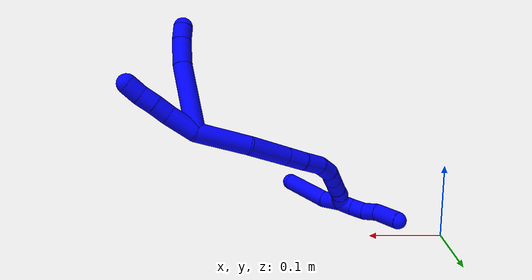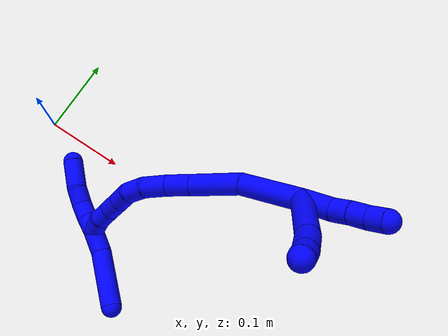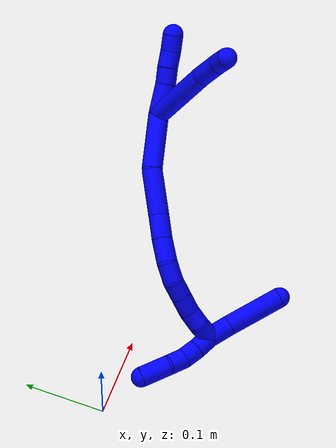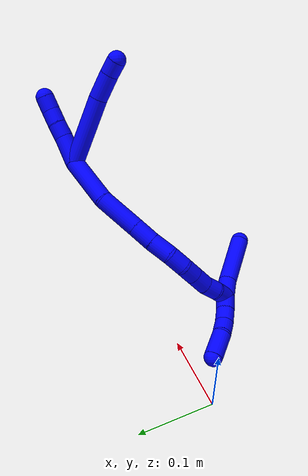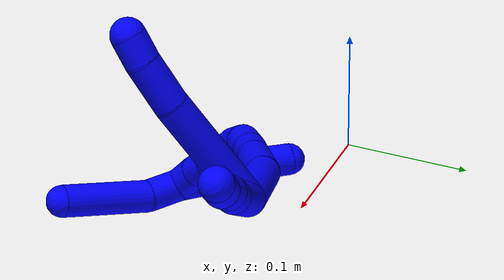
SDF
<sdf version="1.7">
 <world name="default">
  <model name="1">
   <static>0</static>
   <link name="1">
    <collision name="collision-cylinder-e_1_2_8">
     <pose>-0.022799 -0.006293 0.040173 0.155375 -0.511007 -0.040662</pose>
     <geometry><cylinder><radius>0.0125</radius><length>0.093235</length></cylinder></geometry>
     <surface>
      <friction><ode><mu>1.16</mu><mu2>1.16</mu2><slip1>0</slip1><slip2>0</slip2></ode></friction>
      <contact><ode><kp>1e+06</kp><kd>1</kd><max_vel>0</max_vel><min_depth>0.001</min_depth></ode></contact>
     </surface>
    </collision>
    <visual name="visual-cylinder-e_1_2_8">
     <pose>-0.022799 -0.006293 0.040173 0.155375 -0.511007 -0.040662</pose>
     <geometry><cylinder><radius>0.0125</radius><length>0.093235</length></cylinder></geometry>
     <material><ambient>0 0 1 1</ambient></material>
    </visual>
    <collision name="collision-cylinder-e_2_8_9">
     <pose>-0.056466 -0.014445 0.09463 0.129459 -0.646367 -0.043413</pose>
     <geometry><cylinder><radius>0.0125</radius><length>0.036091</length></cylinder></geometry>
     <surface>
      <friction><ode><mu>1.16</mu><mu2>1.16</mu2><slip1>0</slip1><slip2>0</slip2></ode></friction>
      <contact><ode><kp>1e+06</kp><kd>1</kd><max_vel>0</max_vel><min_depth>0.001</min_depth></ode></contact>
     </surface>
    </collision>
    <visual name="visual-cylinder-e_2_8_9">
     <pose>-0.056466 -0.014445 0.09463 0.129459 -0.646367 -0.043413</pose>
     <geometry><cylinder><radius>0.0125</radius><length>0.036091</length></cylinder></geometry>
     <material><ambient>0 0 1 1</ambient></material>
    </visual>
    <collision name="collision-cylinder-e_3_9_6">
     <pose>-0.074538 -0.016807 0.116311 0.067872 -0.771045 -0.027553</pose>
     <geometry><cylinder><radius>0.0125</radius><length>0.020673</length></cylinder></geometry>
     <surface>
      <friction><ode><mu>1.16</mu><mu2>1.16</mu2><slip1>0</slip1><slip2>0</slip2></ode></friction>
      <contact><ode><kp>1e+06</kp><kd>1</kd><max_vel>0</max_vel><min_depth>0.001</min_depth></ode></contact>
     </surface>
    </collision>
    <visual name="visual-cylinder-e_3_9_6">
     <pose>-0.074538 -0.016807 0.116311 0.067872 -0.771045 -0.027553</pose>
     <geometry><cylinder><radius>0.0125</radius><length>0.020673</length></cylinder></geometry>
     <material><ambient>0 0 1 1</ambient></material>
    </visual>
    <collision name="collision-cylinder-e_1_2_10">
     <pose>0.00683 0.00134 0.018038 -0.07416 0.361047 -0.013541</pose>
     <geometry><cylinder><radius>0.0125</radius><length>0.038668</length></cylinder></geometry>
     <surface>
      <friction><ode><mu>1.16</mu><mu2>1.16</mu2><slip1>0</slip1><slip2>0</slip2></ode></friction>
      <contact><ode><kp>1e+06</kp><kd>1</kd><max_vel>0</max_vel><min_depth>0.001</min_depth></ode></contact>
     </surface>
    </collision>
    <visual name="visual-cylinder-e_1_2_10">
     <pose>0.00683 0.00134 0.018038 -0.07416 0.361047 -0.013541</pose>
     <geometry><cylinder><radius>0.0125</radius><length>0.038668</length></cylinder></geometry>
     <material><ambient>0 0 1 1</ambient></material>
    </visual>
    <collision name="collision-cylinder-e_2_10_11">
     <pose>0.016817 0.00472 0.045662 -0.209658 0.311684 -0.033059</pose>
     <geometry><cylinder><radius>0.0125</radius><length>0.020596</length></cylinder></geometry>
     <surface>
      <friction><ode><mu>1.16</mu><mu2>1.16</mu2><slip1>0</slip1><slip2>0</slip2></ode></friction>
      <contact><ode><kp>1e+06</kp><kd>1</kd><max_vel>0</max_vel><min_depth>0.001</min_depth></ode></contact>
     </surface>
    </collision>
    <visual name="visual-cylinder-e_2_10_11">
     <pose>0.016817 0.00472 0.045662 -0.209658 0.311684 -0.033059</pose>
     <geometry><cylinder><radius>0.0125</radius><length>0.020596</length></cylinder></geometry>
     <material><ambient>0 0 1 1</ambient></material>
    </visual>
    <collision name="collision-cylinder-e_3_11_12">
     <pose>0.02348 0.007844 0.064694 -0.114275 0.353184 -0.020414</pose>
     <geometry><cylinder><radius>0.0125</radius><length>0.020264</length></cylinder></geometry>
     <surface>
      <friction><ode><mu>1.16</mu><mu2>1.16</mu2><slip1>0</slip1><slip2>0</slip2></ode></friction>
      <contact><ode><kp>1e+06</kp><kd>1</kd><max_vel>0</max_vel><min_depth>0.001</min_depth></ode></contact>
     </surface>
    </collision>
    <visual name="visual-cylinder-e_3_11_12">
     <pose>0.02348 0.007844 0.064694 -0.114275 0.353184 -0.020414</pose>
     <geometry><cylinder><radius>0.0125</radius><length>0.020264</length></cylinder></geometry>
     <material><ambient>0 0 1 1</ambient></material>
    </visual>
    <collision name="collision-cylinder-e_4_12_5">
     <pose>0.02945 0.011008 0.083854 -0.210866 0.243239 -0.025867</pose>
     <geometry><cylinder><radius>0.0125</radius><length>0.020472</length></cylinder></geometry>
     <surface>
      <friction><ode><mu>1.16</mu><mu2>1.16</mu2><slip1>0</slip1><slip2>0</slip2></ode></friction>
      <contact><ode><kp>1e+06</kp><kd>1</kd><max_vel>0</max_vel><min_depth>0.001</min_depth></ode></contact>
     </surface>
    </collision>
    <visual name="visual-cylinder-e_4_12_5">
     <pose>0.02945 0.011008 0.083854 -0.210866 0.243239 -0.025867</pose>
     <geometry><cylinder><radius>0.0125</radius><length>0.020472</length></cylinder></geometry>
     <material><ambient>0 0 1 1</ambient></material>
    </visual>
    <collision name="collision-cylinder-e_1_2_13">
     <pose>-0.022231 -0.001847 -0.026769 3.07271 -0.691893 -2.95099</pose>
     <geometry><cylinder><radius>0.0125</radius><length>0.069691</length></cylinder></geometry>
     <surface>
      <friction><ode><mu>1.16</mu><mu2>1.16</mu2><slip1>0</slip1><slip2>0</slip2></ode></friction>
      <contact><ode><kp>1e+06</kp><kd>1</kd><max_vel>0</max_vel><min_depth>0.001</min_depth></ode></contact>
     </surface>
    </collision>
    <visual name="visual-cylinder-e_1_2_13">
     <pose>-0.022231 -0.001847 -0.026769 3.07271 -0.691893 -2.95099</pose>
     <geometry><cylinder><radius>0.0125</radius><length>0.069691</length></cylinder></geometry>
     <material><ambient>0 0 1 1</ambient></material>
    </visual>
    <collision name="collision-cylinder-e_2_13_14">
     <pose>-0.063036 -0.012749 -0.073897 2.72311 -0.694881 -2.0809</pose>
     <geometry><cylinder><radius>0.0125</radius><length>0.058017</length></cylinder></geometry>
     <surface>
      <friction><ode><mu>1.16</mu><mu2>1.16</mu2><slip1>0</slip1><slip2>0</slip2></ode></friction>
      <contact><ode><kp>1e+06</kp><kd>1</kd><max_vel>0</max_vel><min_depth>0.001</min_depth></ode></contact>
     </surface>
    </collision>
    <visual name="visual-cylinder-e_2_13_14">
     <pose>-0.063036 -0.012749 -0.073897 2.72311 -0.694881 -2.0809</pose>
     <geometry><cylinder><radius>0.0125</radius><length>0.058017</length></cylinder></geometry>
     <material><ambient>0 0 1 1</ambient></material>
    </visual>
    <collision name="collision-cylinder-e_3_14_15">
     <pose>-0.090968 -0.026271 -0.104599 2.73388 -0.693152 -2.10181</pose>
     <geometry><cylinder><radius>0.0125</radius><length>0.029291</length></cylinder></geometry>
     <surface>
      <friction><ode><mu>1.16</mu><mu2>1.16</mu2><slip1>0</slip1><slip2>0</slip2></ode></friction>
      <contact><ode><kp>1e+06</kp><kd>1</kd><max_vel>0</max_vel><min_depth>0.001</min_depth></ode></contact>
     </surface>
    </collision>
    <visual name="visual-cylinder-e_3_14_15">
     <pose>-0.090968 -0.026271 -0.104599 2.73388 -0.693152 -2.10181</pose>
     <geometry><cylinder><radius>0.0125</radius><length>0.029291</length></cylinder></geometry>
     <material><ambient>0 0 1 1</ambient></material>
    </visual>
    <collision name="collision-cylinder-e_4_15_16">
     <pose>-0.110085 -0.036009 -0.124688 2.64584 -0.722052 -1.96059</pose>
     <geometry><cylinder><radius>0.0125</radius><length>0.029532</length></cylinder></geometry>
     <surface>
      <friction><ode><mu>1.16</mu><mu2>1.16</mu2><slip1>0</slip1><slip2>0</slip2></ode></friction>
      <contact><ode><kp>1e+06</kp><kd>1</kd><max_vel>0</max_vel><min_depth>0.001</min_depth></ode></contact>
     </surface>
    </collision>
    <visual name="visual-cylinder-e_4_15_16">
     <pose>-0.110085 -0.036009 -0.124688 2.64584 -0.722052 -1.96059</pose>
     <geometry><cylinder><radius>0.0125</radius><length>0.029532</length></cylinder></geometry>
     <material><ambient>0 0 1 1</ambient></material>
    </visual>
    <collision name="collision-cylinder-e_5_16_17">
     <pose>-0.125051 -0.047953 -0.143136 2.48735 -0.443312 -1.17254</pose>
     <geometry><cylinder><radius>0.0125</radius><length>0.024277</length></cylinder></geometry>
     <surface>
      <friction><ode><mu>1.16</mu><mu2>1.16</mu2><slip1>0</slip1><slip2>0</slip2></ode></friction>
      <contact><ode><kp>1e+06</kp><kd>1</kd><max_vel>0</max_vel><min_depth>0.001</min_depth></ode></contact>
     </surface>
    </collision>
    <visual name="visual-cylinder-e_5_16_17">
     <pose>-0.125051 -0.047953 -0.143136 2.48735 -0.443312 -1.17254</pose>
     <geometry><cylinder><radius>0.0125</radius><length>0.024277</length></cylinder></geometry>
     <material><ambient>0 0 1 1</ambient></material>
    </visual>
    <collision name="collision-cylinder-e_6_17_18">
     <pose>-0.131819 -0.062434 -0.158925 2.30791 -0.146976 -0.329518</pose>
     <geometry><cylinder><radius>0.0125</radius><length>0.02132</length></cylinder></geometry>
     <surface>
      <friction><ode><mu>1.16</mu><mu2>1.16</mu2><slip1>0</slip1><slip2>0</slip2></ode></friction>
      <contact><ode><kp>1e+06</kp><kd>1</kd><max_vel>0</max_vel><min_depth>0.001</min_depth></ode></contact>
     </surface>
    </collision>
    <visual name="visual-cylinder-e_6_17_18">
     <pose>-0.131819 -0.062434 -0.158925 2.30791 -0.146976 -0.329518</pose>
     <geometry><cylinder><radius>0.0125</radius><length>0.02132</length></cylinder></geometry>
     <material><ambient>0 0 1 1</ambient></material>
    </visual>
    <collision name="collision-cylinder-e_7_18_19">
     <pose>-0.13521 -0.078903 -0.173936 2.31167 -0.154656 -0.348201</pose>
     <geometry><cylinder><radius>0.0125</radius><length>0.02376</length></cylinder></geometry>
     <surface>
      <friction><ode><mu>1.16</mu><mu2>1.16</mu2><slip1>0</slip1><slip2>0</slip2></ode></friction>
      <contact><ode><kp>1e+06</kp><kd>1</kd><max_vel>0</max_vel><min_depth>0.001</min_depth></ode></contact>
     </surface>
    </collision>
    <visual name="visual-cylinder-e_7_18_19">
     <pose>-0.13521 -0.078903 -0.173936 2.31167 -0.154656 -0.348201</pose>
     <geometry><cylinder><radius>0.0125</radius><length>0.02376</length></cylinder></geometry>
     <material><ambient>0 0 1 1</ambient></material>
    </visual>
    <collision name="collision-cylinder-e_8_19_20">
     <pose>-0.139922 -0.09586 -0.18736 2.15641 -0.281815 -0.516755</pose>
     <geometry><cylinder><radius>0.0125</radius><length>0.020727</length></cylinder></geometry>
     <surface>
      <friction><ode><mu>1.16</mu><mu2>1.16</mu2><slip1>0</slip1><slip2>0</slip2></ode></friction>
      <contact><ode><kp>1e+06</kp><kd>1</kd><max_vel>0</max_vel><min_depth>0.001</min_depth></ode></contact>
     </surface>
    </collision>
    <visual name="visual-cylinder-e_8_19_20">
     <pose>-0.139922 -0.09586 -0.18736 2.15641 -0.281815 -0.516755</pose>
     <geometry><cylinder><radius>0.0125</radius><length>0.020727</length></cylinder></geometry>
     <material><ambient>0 0 1 1</ambient></material>
    </visual>
    <collision name="collision-cylinder-e_9_20_1">
     <pose>-0.143006 -0.114179 -0.19888 2.11153 -0.017259 -0.030492</pose>
     <geometry><cylinder><radius>0.0125</radius><length>0.023386</length></cylinder></geometry>
     <surface>
      <friction><ode><mu>1.16</mu><mu2>1.16</mu2><slip1>0</slip1><slip2>0</slip2></ode></friction>
      <contact><ode><kp>1e+06</kp><kd>1</kd><max_vel>0</max_vel><min_depth>0.001</min_depth></ode></contact>
     </surface>
    </collision>
    <visual name="visual-cylinder-e_9_20_1">
     <pose>-0.143006 -0.114179 -0.19888 2.11153 -0.017259 -0.030492</pose>
     <geometry><cylinder><radius>0.0125</radius><length>0.023386</length></cylinder></geometry>
     <material><ambient>0 0 1 1</ambient></material>
    </visual>
    <collision name="collision-cylinder-e_1_1_21">
     <pose>-0.146181 -0.11843 -0.213124 -2.52974 -0.287657 0.859879</pose>
     <geometry><cylinder><radius>0.0125</radius><length>0.020957</length></cylinder></geometry>
     <surface>
      <friction><ode><mu>1.16</mu><mu2>1.16</mu2><slip1>0</slip1><slip2>0</slip2></ode></friction>
      <contact><ode><kp>1e+06</kp><kd>1</kd><max_vel>0</max_vel><min_depth>0.001</min_depth></ode></contact>
     </surface>
    </collision>
    <visual name="visual-cylinder-e_1_1_21">
     <pose>-0.146181 -0.11843 -0.213124 -2.52974 -0.287657 0.859879</pose>
     <geometry><cylinder><radius>0.0125</radius><length>0.020957</length></cylinder></geometry>
     <material><ambient>0 0 1 1</ambient></material>
    </visual>
    <collision name="collision-cylinder-e_2_21_22">
     <pose>-0.151908 -0.106209 -0.228696 -2.42116 -0.274642 0.70329</pose>
     <geometry><cylinder><radius>0.0125</radius><length>0.020315</length></cylinder></geometry>
     <surface>
      <friction><ode><mu>1.16</mu><mu2>1.16</mu2><slip1>0</slip1><slip2>0</slip2></ode></friction>
      <contact><ode><kp>1e+06</kp><kd>1</kd><max_vel>0</max_vel><min_depth>0.001</min_depth></ode></contact>
     </surface>
    </collision>
    <visual name="visual-cylinder-e_2_21_22">
     <pose>-0.151908 -0.106209 -0.228696 -2.42116 -0.274642 0.70329</pose>
     <geometry><cylinder><radius>0.0125</radius><length>0.020315</length></cylinder></geometry>
     <material><ambient>0 0 1 1</ambient></material>
    </visual>
    <collision name="collision-cylinder-e_3_22_23">
     <pose>-0.158261 -0.090895 -0.241278 -2.10414 -0.33629 0.578048</pose>
     <geometry><cylinder><radius>0.0125</radius><length>0.021809</length></cylinder></geometry>
     <surface>
      <friction><ode><mu>1.16</mu><mu2>1.16</mu2><slip1>0</slip1><slip2>0</slip2></ode></friction>
      <contact><ode><kp>1e+06</kp><kd>1</kd><max_vel>0</max_vel><min_depth>0.001</min_depth></ode></contact>
     </surface>
    </collision>
    <visual name="visual-cylinder-e_3_22_23">
     <pose>-0.158261 -0.090895 -0.241278 -2.10414 -0.33629 0.578048</pose>
     <geometry><cylinder><radius>0.0125</radius><length>0.021809</length></cylinder></geometry>
     <material><ambient>0 0 1 1</ambient></material>
    </visual>
    <collision name="collision-cylinder-e_4_23_4">
     <pose>-0.163929 -0.067805 -0.25809 -2.25398 -0.112351 0.235464</pose>
     <geometry><cylinder><radius>0.0125</radius><length>0.036918</length></cylinder></geometry>
     <surface>
      <friction><ode><mu>1.16</mu><mu2>1.16</mu2><slip1>0</slip1><slip2>0</slip2></ode></friction>
      <contact><ode><kp>1e+06</kp><kd>1</kd><max_vel>0</max_vel><min_depth>0.001</min_depth></ode></contact>
     </surface>
    </collision>
    <visual name="visual-cylinder-e_4_23_4">
     <pose>-0.163929 -0.067805 -0.25809 -2.25398 -0.112351 0.235464</pose>
     <geometry><cylinder><radius>0.0125</radius><length>0.036918</length></cylinder></geometry>
     <material><ambient>0 0 1 1</ambient></material>
    </visual>
    <collision name="collision-cylinder-e_1_1_24">
     <pose>-0.138687 -0.134518 -0.196338 0.878113 0.325245 0.153801</pose>
     <geometry><cylinder><radius>0.0125</radius><length>0.028294</length></cylinder></geometry>
     <surface>
      <friction><ode><mu>1.16</mu><mu2>1.16</mu2><slip1>0</slip1><slip2>0</slip2></ode></friction>
      <contact><ode><kp>1e+06</kp><kd>1</kd><max_vel>0</max_vel><min_depth>0.001</min_depth></ode></contact>
     </surface>
    </collision>
    <visual name="visual-cylinder-e_1_1_24">
     <pose>-0.138687 -0.134518 -0.196338 0.878113 0.325245 0.153801</pose>
     <geometry><cylinder><radius>0.0125</radius><length>0.028294</length></cylinder></geometry>
     <material><ambient>0 0 1 1</ambient></material>
    </visual>
    <collision name="collision-cylinder-e_2_24_3">
     <pose>-0.130815 -0.169408 -0.161887 0.759342 0.093615 0.037378</pose>
     <geometry><cylinder><radius>0.0125</radius><length>0.071706</length></cylinder></geometry>
     <surface>
      <friction><ode><mu>1.16</mu><mu2>1.16</mu2><slip1>0</slip1><slip2>0</slip2></ode></friction>
      <contact><ode><kp>1e+06</kp><kd>1</kd><max_vel>0</max_vel><min_depth>0.001</min_depth></ode></contact>
     </surface>
    </collision>
    <visual name="visual-cylinder-e_2_24_3">
     <pose>-0.130815 -0.169408 -0.161887 0.759342 0.093615 0.037378</pose>
     <geometry><cylinder><radius>0.0125</radius><length>0.071706</length></cylinder></geometry>
     <material><ambient>0 0 1 1</ambient></material>
    </visual>
    <collision name="collision-sphere-3">
     <pose>-0.127464 -0.193983 -0.135997 0 -0 0</pose>
     <geometry><sphere><radius>0.0125</radius></sphere></geometry>
     <surface>
      <friction><ode><mu>1.16</mu><mu2>1.16</mu2><slip1>0</slip1><slip2>0</slip2></ode></friction>
      <contact><ode><kp>1e+06</kp><kd>1</kd><max_vel>0</max_vel><min_depth>0.001</min_depth></ode></contact>
     </surface>
    </collision>
    <visual name="visual-sphere-3">
     <pose>-0.127464 -0.193983 -0.135997 0 -0 0</pose>
     <geometry><sphere><radius>0.0125</radius></sphere></geometry>
     <material><ambient>0 0 1 1</ambient></material>
    </visual>
    <collision name="collision-sphere-24">
     <pose>-0.134167 -0.144834 -0.187777 0 -0 0</pose>
     <geometry><sphere><radius>0.0125</radius></sphere></geometry>
     <surface>
      <friction><ode><mu>1.16</mu><mu2>1.16</mu2><slip1>0</slip1><slip2>0</slip2></ode></friction>
      <contact><ode><kp>1e+06</kp><kd>1</kd><max_vel>0</max_vel><min_depth>0.001</min_depth></ode></contact>
     </surface>
    </collision>
    <visual name="visual-sphere-24">
     <pose>-0.134167 -0.144834 -0.187777 0 -0 0</pose>
     <geometry><sphere><radius>0.0125</radius></sphere></geometry>
     <material><ambient>0 0 1 1</ambient></material>
    </visual>
    <collision name="collision-sphere-4">
     <pose>-0.165999 -0.053579 -0.269669 0 -0 0</pose>
     <geometry><sphere><radius>0.0125</radius></sphere></geometry>
     <surface>
      <friction><ode><mu>1.16</mu><mu2>1.16</mu2><slip1>0</slip1><slip2>0</slip2></ode></friction>
      <contact><ode><kp>1e+06</kp><kd>1</kd><max_vel>0</max_vel><min_depth>0.001</min_depth></ode></contact>
     </surface>
    </collision>
    <visual name="visual-sphere-4">
     <pose>-0.165999 -0.053579 -0.269669 0 -0 0</pose>
     <geometry><sphere><radius>0.0125</radius></sphere></geometry>
     <material><ambient>0 0 1 1</ambient></material>
    </visual>
    <collision name="collision-sphere-23">
     <pose>-0.16186 -0.082031 -0.246511 0 -0 0</pose>
     <geometry><sphere><radius>0.0125</radius></sphere></geometry>
     <surface>
      <friction><ode><mu>1.16</mu><mu2>1.16</mu2><slip1>0</slip1><slip2>0</slip2></ode></friction>
      <contact><ode><kp>1e+06</kp><kd>1</kd><max_vel>0</max_vel><min_depth>0.001</min_depth></ode></contact>
     </surface>
    </collision>
    <visual name="visual-sphere-23">
     <pose>-0.16186 -0.082031 -0.246511 0 -0 0</pose>
     <geometry><sphere><radius>0.0125</radius></sphere></geometry>
     <material><ambient>0 0 1 1</ambient></material>
    </visual>
    <collision name="collision-sphere-22">
     <pose>-0.154663 -0.099759 -0.236044 0 -0 0</pose>
     <geometry><sphere><radius>0.0125</radius></sphere></geometry>
     <surface>
      <friction><ode><mu>1.16</mu><mu2>1.16</mu2><slip1>0</slip1><slip2>0</slip2></ode></friction>
      <contact><ode><kp>1e+06</kp><kd>1</kd><max_vel>0</max_vel><min_depth>0.001</min_depth></ode></contact>
     </surface>
    </collision>
    <visual name="visual-sphere-22">
     <pose>-0.154663 -0.099759 -0.236044 0 -0 0</pose>
     <geometry><sphere><radius>0.0125</radius></sphere></geometry>
     <material><ambient>0 0 1 1</ambient></material>
    </visual>
    <collision name="collision-sphere-21">
     <pose>-0.149153 -0.112659 -0.221349 0 -0 0</pose>
     <geometry><sphere><radius>0.0125</radius></sphere></geometry>
     <surface>
      <friction><ode><mu>1.16</mu><mu2>1.16</mu2><slip1>0</slip1><slip2>0</slip2></ode></friction>
      <contact><ode><kp>1e+06</kp><kd>1</kd><max_vel>0</max_vel><min_depth>0.001</min_depth></ode></contact>
     </surface>
    </collision>
    <visual name="visual-sphere-21">
     <pose>-0.149153 -0.112659 -0.221349 0 -0 0</pose>
     <geometry><sphere><radius>0.0125</radius></sphere></geometry>
     <material><ambient>0 0 1 1</ambient></material>
    </visual>
    <collision name="collision-sphere-1">
     <pose>-0.143208 -0.124202 -0.204898 0 -0 0</pose>
     <geometry><sphere><radius>0.0125</radius></sphere></geometry>
     <surface>
      <friction><ode><mu>1.16</mu><mu2>1.16</mu2><slip1>0</slip1><slip2>0</slip2></ode></friction>
      <contact><ode><kp>1e+06</kp><kd>1</kd><max_vel>0</max_vel><min_depth>0.001</min_depth></ode></contact>
     </surface>
    </collision>
    <visual name="visual-sphere-1">
     <pose>-0.143208 -0.124202 -0.204898 0 -0 0</pose>
     <geometry><sphere><radius>0.0125</radius></sphere></geometry>
     <material><ambient>0 0 1 1</ambient></material>
    </visual>
    <collision name="collision-sphere-11">
     <pose>0.019975 0.00676 0.055249 0 -0 0</pose>
     <geometry><sphere><radius>0.0125</radius></sphere></geometry>
     <surface>
      <friction><ode><mu>1.16</mu><mu2>1.16</mu2><slip1>0</slip1><slip2>0</slip2></ode></friction>
      <contact><ode><kp>1e+06</kp><kd>1</kd><max_vel>0</max_vel><min_depth>0.001</min_depth></ode></contact>
     </surface>
    </collision>
    <visual name="visual-sphere-11">
     <pose>0.019975 0.00676 0.055249 0 -0 0</pose>
     <geometry><sphere><radius>0.0125</radius></sphere></geometry>
     <material><ambient>0 0 1 1</ambient></material>
    </visual>
    <collision name="collision-sphere-10">
     <pose>0.013659 0.00268 0.036075 0 -0 0</pose>
     <geometry><sphere><radius>0.0125</radius></sphere></geometry>
     <surface>
      <friction><ode><mu>1.16</mu><mu2>1.16</mu2><slip1>0</slip1><slip2>0</slip2></ode></friction>
      <contact><ode><kp>1e+06</kp><kd>1</kd><max_vel>0</max_vel><min_depth>0.001</min_depth></ode></contact>
     </surface>
    </collision>
    <visual name="visual-sphere-10">
     <pose>0.013659 0.00268 0.036075 0 -0 0</pose>
     <geometry><sphere><radius>0.0125</radius></sphere></geometry>
     <material><ambient>0 0 1 1</ambient></material>
    </visual>
    <collision name="collision-sphere-6">
     <pose>-0.081742 -0.01731 0.123707 0 -0 0</pose>
     <geometry><sphere><radius>0.0125</radius></sphere></geometry>
     <surface>
      <friction><ode><mu>1.16</mu><mu2>1.16</mu2><slip1>0</slip1><slip2>0</slip2></ode></friction>
      <contact><ode><kp>1e+06</kp><kd>1</kd><max_vel>0</max_vel><min_depth>0.001</min_depth></ode></contact>
     </surface>
    </collision>
    <visual name="visual-sphere-6">
     <pose>-0.081742 -0.01731 0.123707 0 -0 0</pose>
     <geometry><sphere><radius>0.0125</radius></sphere></geometry>
     <material><ambient>0 0 1 1</ambient></material>
    </visual>
    <collision name="collision-sphere-9">
     <pose>-0.067335 -0.016305 0.108915 0 -0 0</pose>
     <geometry><sphere><radius>0.0125</radius></sphere></geometry>
     <surface>
      <friction><ode><mu>1.16</mu><mu2>1.16</mu2><slip1>0</slip1><slip2>0</slip2></ode></friction>
      <contact><ode><kp>1e+06</kp><kd>1</kd><max_vel>0</max_vel><min_depth>0.001</min_depth></ode></contact>
     </surface>
    </collision>
    <visual name="visual-sphere-9">
     <pose>-0.067335 -0.016305 0.108915 0 -0 0</pose>
     <geometry><sphere><radius>0.0125</radius></sphere></geometry>
     <material><ambient>0 0 1 1</ambient></material>
    </visual>
    <collision name="collision-sphere-2">
     <geometry><sphere><radius>0.0125</radius></sphere></geometry>
     <surface>
      <friction><ode><mu>1.16</mu><mu2>1.16</mu2><slip1>0</slip1><slip2>0</slip2></ode></friction>
      <contact><ode><kp>1e+06</kp><kd>1</kd><max_vel>0</max_vel><min_depth>0.001</min_depth></ode></contact>
     </surface>
    </collision>
    <visual name="visual-sphere-2">
     <geometry><sphere><radius>0.0125</radius></sphere></geometry>
     <material><ambient>0 0 1 1</ambient></material>
    </visual>
    <collision name="collision-sphere-19">
     <pose>-0.13704 -0.087564 -0.181858 0 -0 0</pose>
     <geometry><sphere><radius>0.0125</radius></sphere></geometry>
     <surface>
      <friction><ode><mu>1.16</mu><mu2>1.16</mu2><slip1>0</slip1><slip2>0</slip2></ode></friction>
      <contact><ode><kp>1e+06</kp><kd>1</kd><max_vel>0</max_vel><min_depth>0.001</min_depth></ode></contact>
     </surface>
    </collision>
    <visual name="visual-sphere-19">
     <pose>-0.13704 -0.087564 -0.181858 0 -0 0</pose>
     <geometry><sphere><radius>0.0125</radius></sphere></geometry>
     <material><ambient>0 0 1 1</ambient></material>
    </visual>
    <collision name="collision-sphere-8">
     <pose>-0.045597 -0.012585 0.080345 0 -0 0</pose>
     <geometry><sphere><radius>0.0125</radius></sphere></geometry>
     <surface>
      <friction><ode><mu>1.16</mu><mu2>1.16</mu2><slip1>0</slip1><slip2>0</slip2></ode></friction>
      <contact><ode><kp>1e+06</kp><kd>1</kd><max_vel>0</max_vel><min_depth>0.001</min_depth></ode></contact>
     </surface>
    </collision>
    <visual name="visual-sphere-8">
     <pose>-0.045597 -0.012585 0.080345 0 -0 0</pose>
     <geometry><sphere><radius>0.0125</radius></sphere></geometry>
     <material><ambient>0 0 1 1</ambient></material>
    </visual>
    <collision name="collision-sphere-12">
     <pose>0.026985 0.008928 0.074139 0 -0 0</pose>
     <geometry><sphere><radius>0.0125</radius></sphere></geometry>
     <surface>
      <friction><ode><mu>1.16</mu><mu2>1.16</mu2><slip1>0</slip1><slip2>0</slip2></ode></friction>
      <contact><ode><kp>1e+06</kp><kd>1</kd><max_vel>0</max_vel><min_depth>0.001</min_depth></ode></contact>
     </surface>
    </collision>
    <visual name="visual-sphere-12">
     <pose>0.026985 0.008928 0.074139 0 -0 0</pose>
     <geometry><sphere><radius>0.0125</radius></sphere></geometry>
     <material><ambient>0 0 1 1</ambient></material>
    </visual>
    <collision name="collision-sphere-5">
     <pose>0.031915 0.013087 0.093568 0 -0 0</pose>
     <geometry><sphere><radius>0.0125</radius></sphere></geometry>
     <surface>
      <friction><ode><mu>1.16</mu><mu2>1.16</mu2><slip1>0</slip1><slip2>0</slip2></ode></friction>
      <contact><ode><kp>1e+06</kp><kd>1</kd><max_vel>0</max_vel><min_depth>0.001</min_depth></ode></contact>
     </surface>
    </collision>
    <visual name="visual-sphere-5">
     <pose>0.031915 0.013087 0.093568 0 -0 0</pose>
     <geometry><sphere><radius>0.0125</radius></sphere></geometry>
     <material><ambient>0 0 1 1</ambient></material>
    </visual>
    <collision name="collision-sphere-13">
     <pose>-0.044462 -0.003694 -0.053537 0 -0 0</pose>
     <geometry><sphere><radius>0.0125</radius></sphere></geometry>
     <surface>
      <friction><ode><mu>1.16</mu><mu2>1.16</mu2><slip1>0</slip1><slip2>0</slip2></ode></friction>
      <contact><ode><kp>1e+06</kp><kd>1</kd><max_vel>0</max_vel><min_depth>0.001</min_depth></ode></contact>
     </surface>
    </collision>
    <visual name="visual-sphere-13">
     <pose>-0.044462 -0.003694 -0.053537 0 -0 0</pose>
     <geometry><sphere><radius>0.0125</radius></sphere></geometry>
     <material><ambient>0 0 1 1</ambient></material>
    </visual>
    <collision name="collision-sphere-14">
     <pose>-0.08161 -0.021804 -0.094257 0 -0 0</pose>
     <geometry><sphere><radius>0.0125</radius></sphere></geometry>
     <surface>
      <friction><ode><mu>1.16</mu><mu2>1.16</mu2><slip1>0</slip1><slip2>0</slip2></ode></friction>
      <contact><ode><kp>1e+06</kp><kd>1</kd><max_vel>0</max_vel><min_depth>0.001</min_depth></ode></contact>
     </surface>
    </collision>
    <visual name="visual-sphere-14">
     <pose>-0.08161 -0.021804 -0.094257 0 -0 0</pose>
     <geometry><sphere><radius>0.0125</radius></sphere></geometry>
     <material><ambient>0 0 1 1</ambient></material>
    </visual>
    <collision name="collision-sphere-15">
     <pose>-0.100326 -0.030738 -0.114941 0 -0 0</pose>
     <geometry><sphere><radius>0.0125</radius></sphere></geometry>
     <surface>
      <friction><ode><mu>1.16</mu><mu2>1.16</mu2><slip1>0</slip1><slip2>0</slip2></ode></friction>
      <contact><ode><kp>1e+06</kp><kd>1</kd><max_vel>0</max_vel><min_depth>0.001</min_depth></ode></contact>
     </surface>
    </collision>
    <visual name="visual-sphere-15">
     <pose>-0.100326 -0.030738 -0.114941 0 -0 0</pose>
     <geometry><sphere><radius>0.0125</radius></sphere></geometry>
     <material><ambient>0 0 1 1</ambient></material>
    </visual>
    <collision name="collision-sphere-16">
     <pose>-0.119845 -0.04128 -0.134435 0 -0 0</pose>
     <geometry><sphere><radius>0.0125</radius></sphere></geometry>
     <surface>
      <friction><ode><mu>1.16</mu><mu2>1.16</mu2><slip1>0</slip1><slip2>0</slip2></ode></friction>
      <contact><ode><kp>1e+06</kp><kd>1</kd><max_vel>0</max_vel><min_depth>0.001</min_depth></ode></contact>
     </surface>
    </collision>
    <visual name="visual-sphere-16">
     <pose>-0.119845 -0.04128 -0.134435 0 -0 0</pose>
     <geometry><sphere><radius>0.0125</radius></sphere></geometry>
     <material><ambient>0 0 1 1</ambient></material>
    </visual>
    <collision name="collision-sphere-17">
     <pose>-0.130258 -0.054626 -0.151837 0 -0 0</pose>
     <geometry><sphere><radius>0.0125</radius></sphere></geometry>
     <surface>
      <friction><ode><mu>1.16</mu><mu2>1.16</mu2><slip1>0</slip1><slip2>0</slip2></ode></friction>
      <contact><ode><kp>1e+06</kp><kd>1</kd><max_vel>0</max_vel><min_depth>0.001</min_depth></ode></contact>
     </surface>
    </collision>
    <visual name="visual-sphere-17">
     <pose>-0.130258 -0.054626 -0.151837 0 -0 0</pose>
     <geometry><sphere><radius>0.0125</radius></sphere></geometry>
     <material><ambient>0 0 1 1</ambient></material>
    </visual>
    <collision name="collision-sphere-18">
     <pose>-0.13338 -0.070241 -0.166013 0 -0 0</pose>
     <geometry><sphere><radius>0.0125</radius></sphere></geometry>
     <surface>
      <friction><ode><mu>1.16</mu><mu2>1.16</mu2><slip1>0</slip1><slip2>0</slip2></ode></friction>
      <contact><ode><kp>1e+06</kp><kd>1</kd><max_vel>0</max_vel><min_depth>0.001</min_depth></ode></contact>
     </surface>
    </collision>
    <visual name="visual-sphere-18">
     <pose>-0.13338 -0.070241 -0.166013 0 -0 0</pose>
     <geometry><sphere><radius>0.0125</radius></sphere></geometry>
     <material><ambient>0 0 1 1</ambient></material>
    </visual>
    <collision name="collision-sphere-20">
     <pose>-0.142804 -0.104156 -0.192862 0 -0 0</pose>
     <geometry><sphere><radius>0.0125</radius></sphere></geometry>
     <surface>
      <friction><ode><mu>1.16</mu><mu2>1.16</mu2><slip1>0</slip1><slip2>0</slip2></ode></friction>
      <contact><ode><kp>1e+06</kp><kd>1</kd><max_vel>0</max_vel><min_depth>0.001</min_depth></ode></contact>
     </surface>
    </collision>
    <visual name="visual-sphere-20">
     <pose>-0.142804 -0.104156 -0.192862 0 -0 0</pose>
     <geometry><sphere><radius>0.0125</radius></sphere></geometry>
     <material><ambient>0 0 1 1</ambient></material>
    </visual>
    <inertial>
     <pose>-0.079197 -0.050306 -0.079019 0 -0 0</pose>
     <mass>0.75</mass>
     <inertia><ixx>6e-05</ixx><ixy>0</ixy><ixz>0</ixz><iyy>0.000121</iyy><iyz>0</iyz><izz>0.000116</izz></inertia>
    </inertial>
   </link>
   <pose>0.327385 0.052424 0.159691 0.520986 0.503008 0.603069</pose>
  </model>
 </world>
</sdf>
